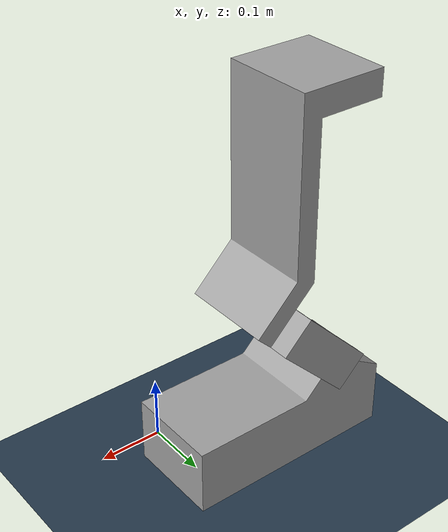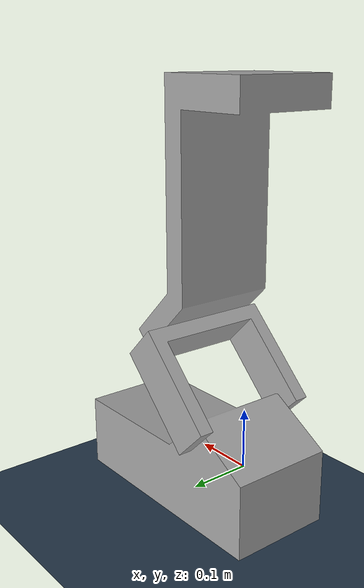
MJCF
<mujoco model="WalkON5">
    <compiler inertiafromgeom="false" angle="degree" balanceinertia = "true"/>
    <default>
        <joint limited="true" damping="1" armature="0"/>
        <geom condim="1" material="matgeom"/>
    </default>
    <option timestep=".005" iterations="50" tolerance="1e-16" solver="Newton" jacobian="dense" cone="pyramidal">
        <flag contact="enable"/>
    </option>
    <size nconmax="50" njmax="500" nstack="10000"/>
    <visual>
        <map force="0.1" zfar="30"/>
        <rgba haze="0.35 0.35 0.35 1"/>
        <quality shadowsize="2048"/>
        <global offwidth="1200" offheight="960"/>
    </visual>
    <asset>
        <texture type="skybox" builtin="gradient" rgb1="0.3 0.5 0.7" rgb2="0 0 0" width="512" height="512"/>
        <texture name="texplane" type="2d" builtin="checker" rgb1=".2 .3 .4" rgb2=".1 0.15 0.2" width="512" height="512" mark="cross" markrgb=".8 .8 .8"/>
        <texture name="texgeom" type="cube" builtin="flat" mark="cross" width="127" height="1278"
            rgb1="0.8 0.8 0.8" rgb2="0.6 0.6 0.6" markrgb="1 1 1" random="0.01"/>
        <material name="matplane" reflectance="0.3" texture="texplane" texrepeat="1 1" texuniform="true"/>
        <material name="matgeom" texture="texgeom" texuniform="true" rgba="0.8 0.8 0.8 1"/>
        <mesh name="BASE" file="../walkon_stls/BASE.STL"/>
        <mesh name="L_BASE" file="../new_stls/L_BASE.STL"/>
        <mesh name="L_HIP" file="../new_stls/L_HIP.STL"/>
        <mesh name="L_THIGH" file="../new_stls/L_THIGH.STL"/>
        <mesh name="L_SHANK" file="../new_stls/L_SHANK.STL"/>
        <mesh name="L_ANKLE" file="../new_stls/L_ANKLE.STL"/>
        <mesh name="L_FOOT" file="../new_stls/L_FOOT.STL"/>
    </asset>
    <worldbody>
        <geom name="floor" pos="0 0 0" size="0 0 .25" type="plane" material="matplane" condim="3"/>
        <light name="light" pos="0 5 5"/>

                        <body name="L_SHANK" pos="0 0 1.2">
                            <freejoint/>
                            <geom type="mesh" mesh="L_SHANK"/>
                            <inertial mass="2.49032" pos="-0.11729 0.15565 -0.73073" fullinertia="0.03393903802 0.03098446128 0.00742201881 -0.00247943357 -0.00384162992 0.00441951882"/>
                            <body name="L_ANKLE" pos="0 0.05 0" euler="0 0 0">
                                <joint name="JOINT_LA_INV" pos="-.06603 .10476 -.90801" axis="1 0 1" range="0 0.01"/>
                                <geom type="mesh" mesh="L_ANKLE"/>
                                <inertial mass="0.55947" pos="-0.11980 0.13526 -0.95381" fullinertia="0.00291884244 0.00128487003 0.00290532896 0.00000005 0.00054856466 0.00000000"/>
                                <body name="L_FOOT" pos="0 0 0" euler="0 0 0">
                                    <joint name="JOINT_LA_PLA" pos="-.15552 .17526 -.9975" axis="0 -1 0" range="-170 170"/>
                                    <geom type="mesh" mesh="L_FOOT" priority="1" solimp="0.015 1 0.023" condim="3" friction="0.9 0.9 0.01"/>
                                    <inertial mass="7.55104" pos="-0.06324 0.13721 -0.97385" fullinertia="0.19865487853 0.21838580395 0.07110140611 -0.00052461653 0.01985821394 -0.00159785996"/>
                                </body>
                            </body>
                        </body>
    </worldbody>

    <actuator>
        <!-- LEFT LIMB ACTUATORS -->
        <general name="ACT_L_ANK_INVER" joint="JOINT_LA_INV" gear="1" ctrllimited="true" ctrlrange="-70 70"/>
        <general name="ACT_L_ANK_PLANTAR" joint="JOINT_LA_PLA" gear="1" ctrllimited="true" ctrlrange="-170 170"/>

    </actuator>

        <!-- LEFT LIMB ACTUATORS -->

</mujoco>
